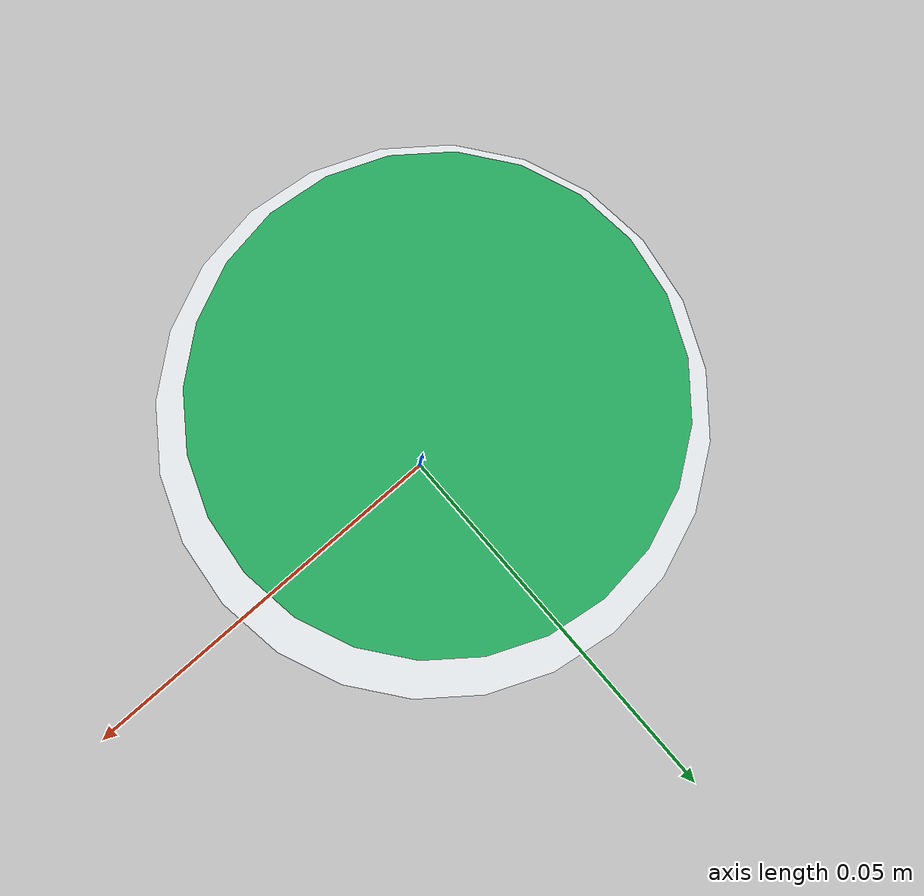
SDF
<?xml version="1.0"?>
<sdf version="1.9">
  <model name="medicine_bottle">
    <static>true</static>
    <link name="body">
      <collision name="body_collision">
        <pose>0 0 0.07 0 0 0</pose>
        <geometry>
          <cylinder>
            <radius>0.022</radius>
            <length>0.14</length>
          </cylinder>
        </geometry>
      </collision>
      <collision name="cap_collision">
        <pose>0 0 0.155 0 0 0</pose>
        <geometry>
          <cylinder>
            <radius>0.018</radius>
            <length>0.03</length>
          </cylinder>
        </geometry>
      </collision>
      <visual name="body_visual">
        <pose>0 0 0.07 0 0 0</pose>
        <geometry>
          <cylinder>
            <radius>0.022</radius>
            <length>0.14</length>
          </cylinder>
        </geometry>
        <material>
          <ambient>0.92 0.93 0.95 1</ambient>
          <diffuse>0.97 0.98 0.99 1</diffuse>
          <specular>0.18 0.18 0.18 1</specular>
        </material>
      </visual>
      <visual name="cap_visual">
        <pose>0 0 0.155 0 0 0</pose>
        <geometry>
          <cylinder>
            <radius>0.018</radius>
            <length>0.03</length>
          </cylinder>
        </geometry>
        <material>
          <ambient>0.14 0.62 0.36 1</ambient>
          <diffuse>0.16 0.72 0.40 1</diffuse>
          <specular>0.10 0.10 0.10 1</specular>
        </material>
      </visual>
    </link>
  </model>
</sdf>
